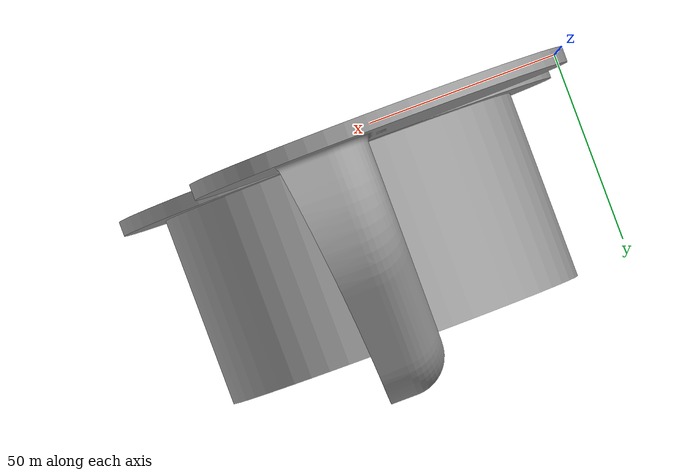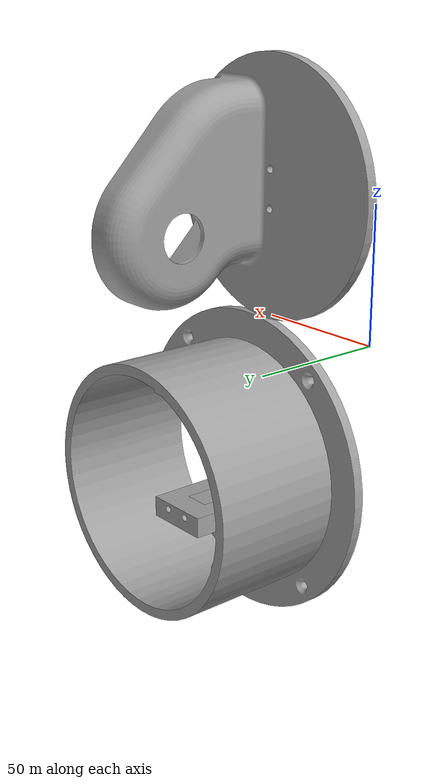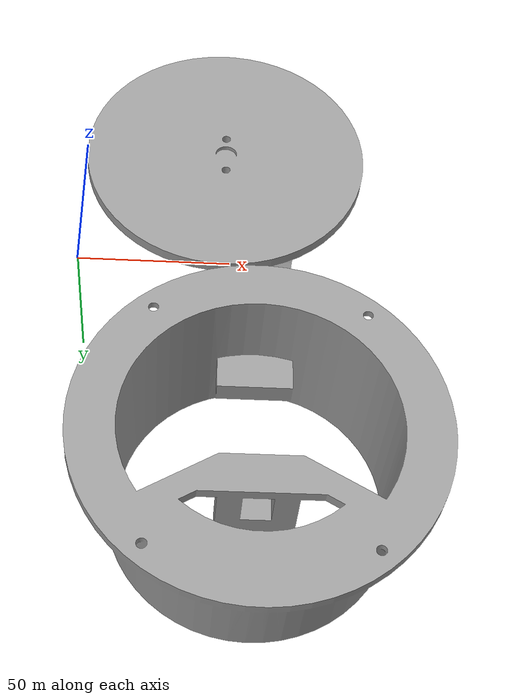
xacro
<?xml version="1.0"?>
<robot xmlns:xacro="http://www.ros.org/wiki/xacro" name="onshape">
    <xacro:arg name="initial_positions_file" default="initial_positions.yaml" />

    <!-- Import onshape urdf file -->
    <xacro:include filename="$(find duman_description)/urdf/protoman.urdf" />

    <!-- Import control_xacro -->
    <xacro:include filename="onshape.ros2_control.xacro" />

    <xacro:onshape_ros2_control name="FakeSystem" initial_positions_file="$(arg initial_positions_file)"/>

</robot>

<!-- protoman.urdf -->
<robot name="onshape">
<link name="base">
<visual>
<origin xyz="0.001402378431521355889 -0.040152130182832479477 0.0047179359060526022268" rpy="-1.57079632679489678 -0 0" />
<geometry>
<mesh filename="package://duman_description/models/base.stl"/>
</geometry>
<material name="base_material">
<color rgba="0.62745098039215685404 0.62745098039215685404 0.62745098039215685404 1.0"/>
</material>
</visual>
<collision>
<origin xyz="0.001402378431521355889 -0.040152130182832479477 0.0047179359060526022268" rpy="-1.57079632679489678 -0 0" />
<geometry>
<mesh filename="package://duman_description/models/base.stl"/>
</geometry>
</collision>
<inertial>
<origin xyz="0.001402387154487819837 -0.039055113999284497839 0.026824037016155939661" rpy="0 0 0"/>
<mass value="1.9998887505119995467" />
<inertia ixx="0.0028505289311519942282" ixy="-7.116077478307083929e-10"  ixz="1.4844253339976727985e-10" iyy="0.0027242990722169493391" iyz="7.9478202315762654052e-05" izz="0.0043475671173903033054" />
</inertial>
</link>

<link name="waist">
<visual>
<origin xyz="0 0 6.9388939039072283776e-18" rpy="3.141592653589793116 -9.5170973626377845172e-34 -7.7783123764239271502e-33" />
<geometry>
<mesh filename="package://duman_description/models/waist.stl"/>
</geometry>
<material name="waist_material">
<color rgba="0.62745098039215685404 0.62745098039215685404 0.62745098039215685404 1.0"/>
</material>
</visual>
<collision>
<origin xyz="0 0 6.9388939039072283776e-18" rpy="3.141592653589793116 -9.5170973626377845172e-34 -7.7783123764239271502e-33" />
<geometry>
<mesh filename="package://duman_description/models/waist.stl"/>
</geometry>
</collision>
<inertial>
<origin xyz="0.0074945384719732385109 -0.0014294797341590967897 -0.019382837320359828925" rpy="0 0 0"/>
<mass value="0.092059501321271233754" />
<inertia ixx="8.4940822070763333154e-05" ixy="3.1823006080747657881e-07"  ixz="8.0371472269756664308e-06" iyy="6.28516293944667595e-05" iyz="-8.4124008803628408945e-06" izz="7.5166939695310772932e-05" />
</inertial>
</link>

<link name="arm_01">
<visual>
<origin xyz="0 0 -0.021000000000000001305" rpy="-1.570796326794896558 -0 0" />
<geometry>
<mesh filename="package://duman_description/models/arm_01.stl"/>
</geometry>
<material name="arm_01_material">
<color rgba="0.62745098039215685404 0.62745098039215685404 0.62745098039215685404 1.0"/>
</material>
</visual>
<collision>
<origin xyz="0 0 -0.021000000000000001305" rpy="-1.570796326794896558 -0 0" />
<geometry>
<mesh filename="package://duman_description/models/arm_01.stl"/>
</geometry>
</collision>
<inertial>
<origin xyz="1.4118928119592636529e-07 0.059999824248745545208 -0.0077715955787856722328" rpy="0 0 0"/>
<mass value="0.080081747849855458576" />
<inertia ixx="0.00012970764013443367049" ixy="6.2337379079985595992e-10"  ixz="1.8765984521855420639e-10" iyy="1.1536398267604721336e-05" iyz="3.6199027491044549358e-12" izz="0.00013579564494234391174" />
</inertial>
</link>

<link name="arm_02">
<visual>
<origin xyz="0.034750000000000016986 0 0" rpy="1.570796326794896558 -5.8276537979193836182e-33 8.3816471179931208447e-31" />
<geometry>
<mesh filename="package://duman_description/models/arm_02.stl"/>
</geometry>
<material name="arm_02_material">
<color rgba="0.62745098039215685404 0.62745098039215685404 0.62745098039215685404 1.0"/>
</material>
</visual>
<collision>
<origin xyz="0.034750000000000016986 0 0" rpy="1.570796326794896558 -5.8276537979193836182e-33 8.3816471179931208447e-31" />
<geometry>
<mesh filename="package://duman_description/models/arm_02.stl"/>
</geometry>
</collision>
<inertial>
<origin xyz="0.041712028774720542879 3.1608016163132355561e-05 -0.0057199411333240688868" rpy="0 0 0"/>
<mass value="0.058871724077163213595" />
<inertia ixx="1.0903197339626600928e-05" ixy="-8.6693131370338083757e-08"  ixz="-5.0399911663230007241e-07" iyy="6.4250083309512761058e-05" iyz="-2.9589785247048074638e-10" izz="6.832931926439171405e-05" />
</inertial>
</link>

<link name="arm_03">
<visual>
<origin xyz="0.004999999999999997502 0 0" rpy="3.141592653589793116 -1.1532389821101088889e-32 -2.6404056403860553927e-32" />
<geometry>
<mesh filename="package://duman_description/models/arm_03.stl"/>
</geometry>
<material name="arm_03_material">
<color rgba="0.62745098039215685404 0.62745098039215685404 0.62745098039215685404 1.0"/>
</material>
</visual>
<collision>
<origin xyz="0.004999999999999997502 0 0" rpy="3.141592653589793116 -1.1532389821101088889e-32 -2.6404056403860553927e-32" />
<geometry>
<mesh filename="package://duman_description/models/arm_03.stl"/>
</geometry>
</collision>
<inertial>
<origin xyz="0.0050459674246820544405 -0.0052709836521303756601 -0.017807944241869835822" rpy="0 0 0"/>
<mass value="0.020587869336073170989" />
<inertia ixx="4.8747901077285755043e-06" ixy="-4.9857010404760316267e-09"  ixz="-1.4442552409285210189e-08" iyy="6.2597253867434255134e-06" iyz="-7.2145292659714469307e-07" izz="3.2611923197073779561e-06" />
</inertial>
</link>

<link name="gripper_base">
<visual>
<origin xyz="-0.040500000000000008216 0.0089999999999999941158 0.016000000000000000333" rpy="-1.570796326794896558 -1.570796326794896558 0" />
<geometry>
<mesh filename="package://duman_description/models/gripper_base.stl"/>
</geometry>
<material name="gripper_base_material">
<color rgba="0.62745098039215685404 0.62745098039215685404 0.62745098039215685404 1.0"/>
</material>
</visual>
<collision>
<origin xyz="-0.040500000000000008216 0.0089999999999999941158 0.016000000000000000333" rpy="-1.570796326794896558 -1.570796326794896558 0" />
<geometry>
<mesh filename="package://duman_description/models/gripper_base.stl"/>
</geometry>
</collision>
<inertial>
<origin xyz="-0.024927882918116345268 0.0064403493394040133013 0.0041575539601085009789" rpy="0 0 0"/>
<mass value="0.020050762012827790665" />
<inertia ixx="4.1262174131169446954e-06" ixy="1.6759752673379916494e-06"  ixz="2.2324216722379258954e-06" iyy="1.1260208646654853469e-05" iyz="-5.0616272175732675626e-07" izz="9.0721203498918214539e-06" />
</inertial>
</link>

<link name="end_effector">
  <visual>
    <geometry>
      <box size="0.001 0.001 0.001"/>
    </geometry>
    <material name="yellow">
      <color rgba="0.5 0.5 0.5 0.1"/>
    </material>
  </visual>
  <collision>
    <geometry>
      <box size="0.001 0.001 0.001"/>
    </geometry>
  </collision>
  <inertial>
    <mass value="0.0"/>
    <inertia ixx="0.0" ixy="0.0" ixz="0.0" iyy="0.0" iyz="0.0" izz="0.0"/>
  </inertial>
</link>

<link name="part_1_gear_2">
<visual>
<origin xyz="0 0 -0.0019999999999999983069" rpy="-1.570796326794896558 -9.1979407139349908072e-32 -2.4613384689265595164e-30" />
<geometry>
<mesh filename="package://duman_description/models/part_1_gear_2.stl"/>
</geometry>
<material name="part_1_gear_2_material">
<color rgba="0.62745098039215685404 0.62745098039215685404 0.62745098039215685404 1.0"/>
</material>
</visual>
<collision>
<origin xyz="0 0 -0.0019999999999999983069" rpy="-1.570796326794896558 -9.1979407139349908072e-32 -2.4613384689265595164e-30" />
<geometry>
<mesh filename="package://duman_description/models/part_1_gear_2.stl"/>
</geometry>
</collision>
<inertial>
<origin xyz="0.0055512025623058831522 0.00058171571194625922626 -0.0019999999999999983069" rpy="0 0 0"/>
<mass value="0.0032272602916286396643" />
<inertia ixx="1.1251893487001180171e-07" ixy="1.042153912886415573e-08"  ixz="5.7266214798550208274e-39" iyy="4.6086035795310490803e-07" iyz="-2.8469444191377108132e-37" izz="5.6477326537877373765e-07" />
</inertial>
</link>

<link name="gripper">
<visual>
<origin xyz="0 1.3877787807814456755e-17 0" rpy="-3.141592653589793116 -3.2279214209219390194e-30 2.7332797770738606552e-30" />
<geometry>
<mesh filename="package://duman_description/models/gripper.stl"/>
</geometry>
<material name="gripper_material">
<color rgba="0.62745098039215685404 0.62745098039215685404 0.62745098039215685404 1.0"/>
</material>
</visual>
<collision>
<origin xyz="0 1.3877787807814456755e-17 0" rpy="-3.141592653589793116 -3.2279214209219390194e-30 2.7332797770738606552e-30" />
<geometry>
<mesh filename="package://duman_description/models/gripper.stl"/>
</geometry>
</collision>
<inertial>
<origin xyz="0.025526730145779431141 -0.0033673571434033786574 -0.0022499977309997721067" rpy="0 0 0"/>
<mass value="0.0031933072162409399143" />
<inertia ixx="7.6192801294376313938e-08" ixy="1.9410217434007387742e-07"  ixz="1.253897990526733417e-13" iyy="9.477187734353013106e-07" iyz="-1.620276003269503519e-13" izz="1.0131339947859868091e-06" />
</inertial>
</link>

<joint name="grip4" type="continuous">
<origin xyz="0.030750000000000027311 0 -0.0040000000000000070222" rpy="1.7163949759338740122e-15 -3.3079810654911678827e-14 1.3981871216373376781e-15" />
<parent link="part_1_gear_2" />
<child link="gripper" />
<axis xyz="0 0 1"/>
<limit effort="1" velocity="20" />
<joint_properties friction="0.0"/>
</joint>

<joint name="grip1" type="continuous">
<origin xyz="-0.038000000000000033751 0.014000000000000002026 0.017900000000000013123" rpy="-1.570796326794896558 -1.3981871216373712047e-15 3.1415926535897913396" />
<parent link="gripper_base" />
<child link="part_1_gear_2" />
<axis xyz="0 0 1"/>
<limit effort="1" velocity="20" />
<joint_properties friction="0.0"/>
</joint>

<link name="part_2_gear_2">
<visual>
<origin xyz="0 0 -0.0019999999999999983069" rpy="1.570796326794896558 -2.481566866632471163e-33 -8.9940928402883914338e-30" />
<geometry>
<mesh filename="package://duman_description/models/part_2_gear_2.stl"/>
</geometry>
<material name="part_2_gear_2_material">
<color rgba="0.62745098039215685404 0.62745098039215685404 0.62745098039215685404 1.0"/>
</material>
</visual>
<collision>
<origin xyz="0 0 -0.0019999999999999983069" rpy="1.570796326794896558 -2.481566866632471163e-33 -8.9940928402883914338e-30" />
<geometry>
<mesh filename="package://duman_description/models/part_2_gear_2.stl"/>
</geometry>
</collision>
<inertial>
<origin xyz="0.0053917110914827020424 -0.00056500245144856992875 -0.0019999999999999983069" rpy="0 0 0"/>
<mass value="0.003322725438389599259" />
<inertia ixx="1.1279348734758980605e-07" ixy="-1.0122118132197549572e-08"  ixz="-3.1966065379980466463e-39" iyy="4.6503598307660309264e-07" iyz="8.4684023355935895053e-38" izz="5.6896886925515397687e-07" />
</inertial>
</link>

<link name="gripper_2">
<visual>
<origin xyz="0 0 -0.0044999999999999970579" rpy="2.7094627295595737167e-31 -8.3317152930019544658e-31 3.0306433604879953617e-30" />
<geometry>
<mesh filename="package://duman_description/models/gripper.stl"/>
</geometry>
<material name="gripper_material">
<color rgba="0.62745098039215685404 0.62745098039215685404 0.62745098039215685404 1.0"/>
</material>
</visual>
<collision>
<origin xyz="0 0 -0.0044999999999999970579" rpy="2.7094627295595737167e-31 -8.3317152930019544658e-31 3.0306433604879953617e-30" />
<geometry>
<mesh filename="package://duman_description/models/gripper.stl"/>
</geometry>
</collision>
<inertial>
<origin xyz="0.025526730145779431141 0.0033673571434033934026 -0.0022500022690002249512" rpy="0 0 0"/>
<mass value="0.0031933072162409399143" />
<inertia ixx="7.6192801294376313938e-08" ixy="-1.9410217434007393036e-07"  ixz="-1.253897990526733417e-13" iyy="9.4771877343530173412e-07" iyz="-1.6202760032695037714e-13" izz="1.0131339947859868091e-06" />
</inertial>
</link>

<joint name="grip3" type="continuous">
<origin xyz="0.030749999999999916289 0 -0.0040000000000000000833" rpy="-5.1491849278015366425e-15 1.1026603551637208921e-14 1.3981871216373475389e-15" />
<parent link="part_2_gear_2" />
<child link="gripper_2" />
<axis xyz="0 0 1"/>
<limit effort="1" velocity="20" />
<joint_properties friction="0.0"/>
</joint>

<joint name="grip2" type="continuous">
<origin xyz="-0.038000000000000033751 0.014000000000000008965 -0.0089999999999999941158" rpy="-1.570796326794896558 -8.9940928402883914338e-30 3.141592653589793116" />
<parent link="gripper_base" />
<child link="part_2_gear_2" />
<axis xyz="0 0 1"/>
<limit effort="1" velocity="20" />
<joint_properties friction="0.0"/>
</joint>

<joint name="wrist" type="continuous">
<origin xyz="0.0049999999999999905631 -0.014000000000000054068 -0.028000000000000108136" rpy="-1.5707963267948950037 -1.570796326794896336 0" />
<parent link="arm_03" />
<child link="gripper_base" />
<axis xyz="0 0 1"/>
<limit effort="1" velocity="20" />
<joint_properties friction="0.0"/>
</joint>

<joint name="wrist_yaw" type="continuous">
<origin xyz="0.089750000000000010325 -0.0052999999999999714007 -0.005500000000000004885" rpy="-3.141592653589793116 1.5707963267948956698 0" />
<parent link="arm_02" />
<child link="arm_03" />
<axis xyz="0 0 1"/>
<limit effort="1" velocity="20" />
<joint_properties friction="0.0"/>
</joint>

<joint name="elbow" type="continuous">
<origin xyz="-2.7755575615628913511e-17 0.11999999999999999556 6.9388939039072283776e-18" rpy="-3.141592653589793116 1.1301280603407945073e-16 1.570796326794896336" />
<parent link="arm_01" />
<child link="arm_02" />
<axis xyz="0 0 1"/>
<limit effort="1" velocity="20" />
<joint_properties friction="0.0"/>
</joint>

<joint name="shoulder" type="continuous">
<origin xyz="0.0040000000000000009506 -0.013910000000000002224 -0.040280000000000003302" rpy="3.141592653589793116 -1.570796326794866804 0" />
<parent link="waist" />
<child link="arm_01" />
<axis xyz="0 0 1"/>
<limit effort="1" velocity="20" />
<joint_properties friction="0.0"/>
</joint>

<joint name="hip" type="continuous">
<origin xyz="0.0014023784315213543711 -0.040152130182832479477 0.060717935906052615536" rpy="3.141592653589793116 2.419538725682435286e-17 1.3877787807813837993e-16" />
<parent link="base" />
<child link="waist" />
<axis xyz="0 0 1"/>
<limit effort="1" velocity="20" />
<joint_properties friction="0.0"/>
</joint>

<joint name="end_effector_joint" type="continuous">
<origin xyz="-0.1015213543711 0.0 0.0" rpy="0.0 2.419538725682435286e-17 1.3877787807813837993e-16" />
<parent link="gripper_base" />
<child link="end_effector" />
<axis xyz="1 0 0"/>
<limit effort="1" velocity="20" />
<joint_properties friction="0.0"/>
</joint>

</robot>
